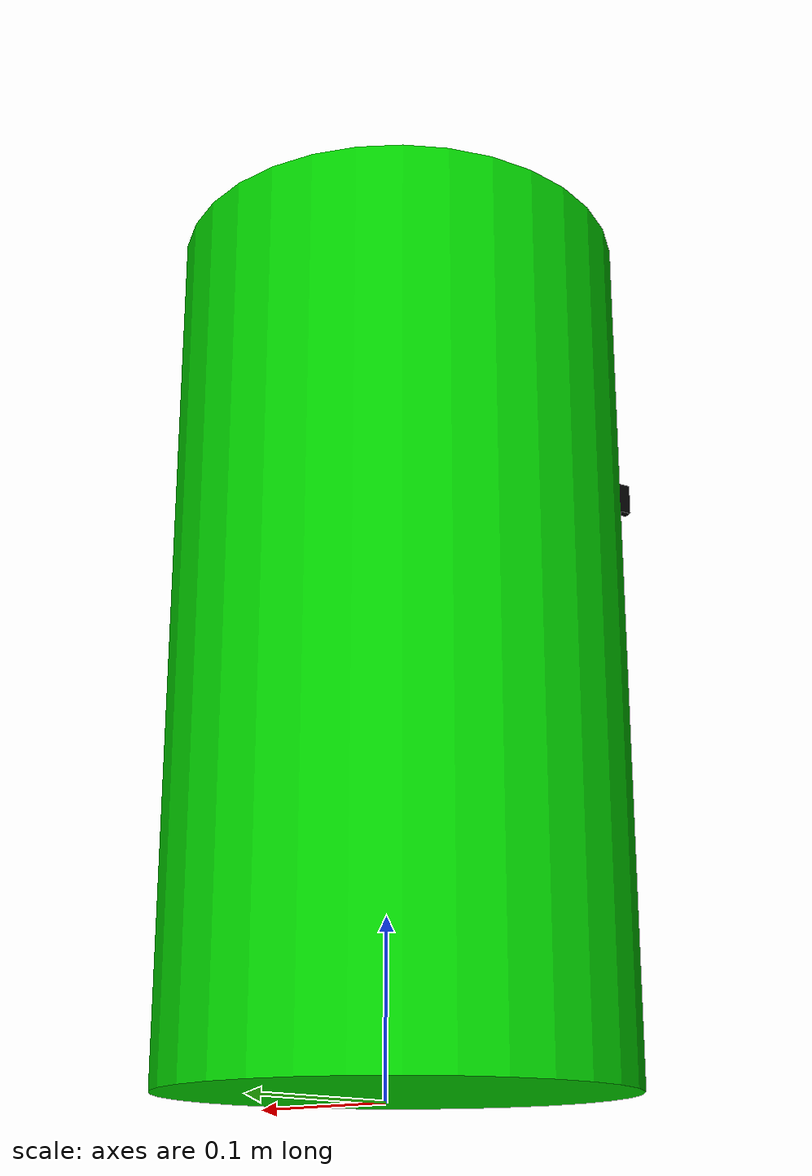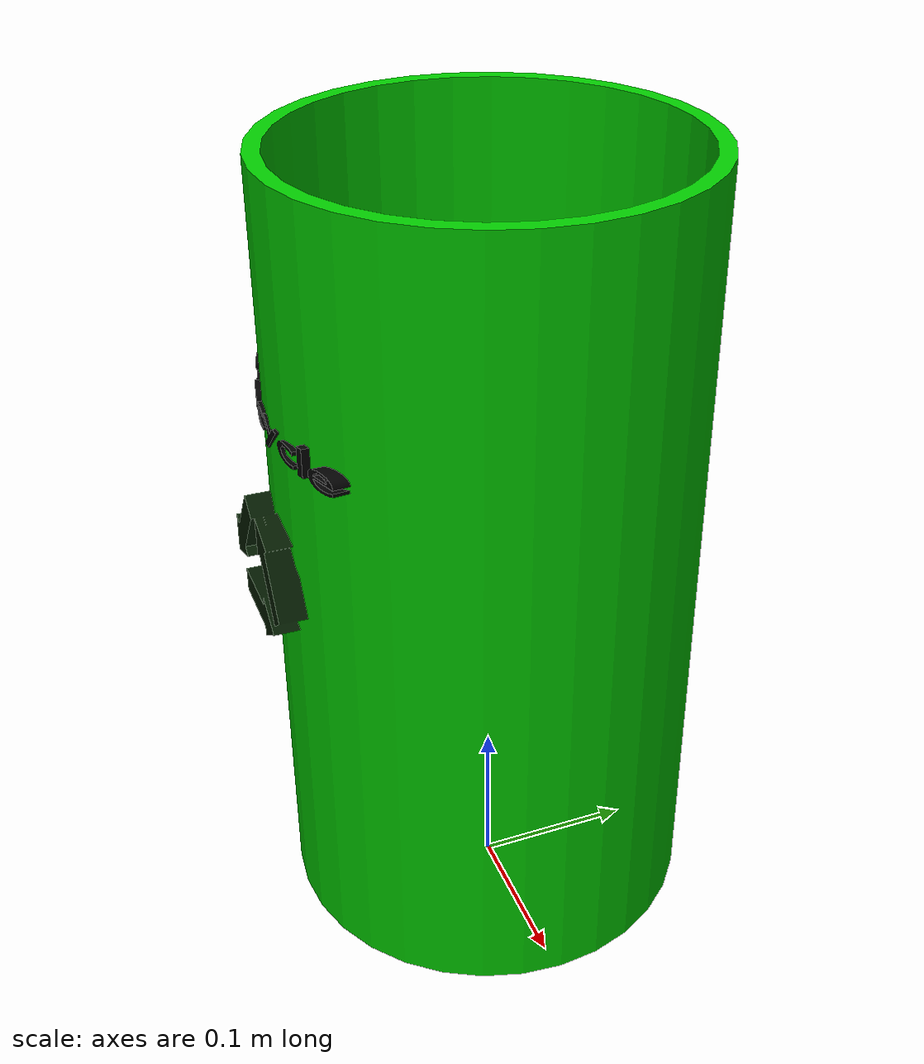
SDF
<?xml version="1.0" ?>
<sdf version="1.5">
  <model name="Dustbin_Green_Cylinder">
    <link name="link">
      <inertial>
        <pose>0 0 0.06 0 0 0</pose>
        <mass>0.05</mass>
        <inertia>
          <ixx>-1.000000</ixx>
          <ixy>0</ixy>
          <ixz>0</ixz>
          <iyy>-1</iyy>
          <iyz>-0.001760</iyz>
          <izz>1</izz>
        </inertia>
      </inertial>
      <collision name="collision">
        <pose>-.01 0 0 0 0 0</pose>
        <geometry>
          <mesh>
            <uri>model://dustbins/dustbin.stl</uri>
            <scale>.001 .001 .001</scale>
          </mesh>
        </geometry>
      </collision>
      <visual name="visual">
        <pose>0 0 0 0 0 0</pose>
        <geometry>
          <mesh>
            <uri>model://dustbins/Dustbin_Green_Cylinder/meshes/bin.dae</uri>
          </mesh>
        </geometry>
      </visual>
    </link>
  </model>
</sdf>
